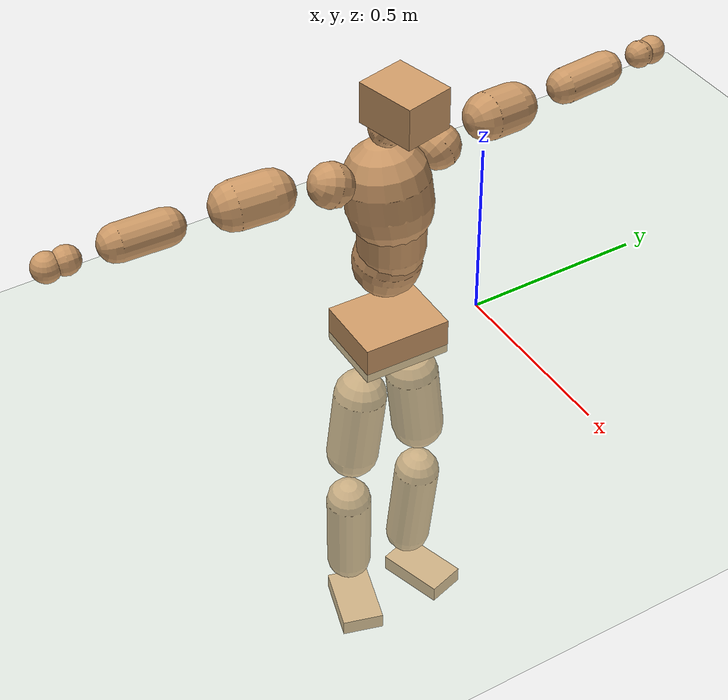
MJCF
<mujoco model="humanoid">
  <compiler coordinate="local" angle="radian"/>
  <default>
    <joint damping="0.0" armature="0.01" stiffness="0.0" limited="true"/>
    <geom conaffinity="1" condim="3" contype="7" margin="0.001" rgba="0.8 0.6 .4 1"/>
  </default>
  <asset>
    <texture type="skybox" builtin="gradient" rgb1=".4 .5 .6" rgb2="0 0 0" width="100" height="100"/>
    <texture builtin="flat" height="1278" mark="cross" markrgb="1 1 1" name="texgeom" random="0.01" rgb1="0.8 0.6 0.4" rgb2="0.8 0.6 0.4" type="cube" width="127"/>
    <texture builtin="checker" height="100" name="texplane" rgb1="0 0 0" rgb2="0.8 0.8 0.8" type="2d" width="100"/>
    <material name="MatPlane" reflectance="0.5" shininess="1" specular="1" texrepeat="60 60" texture="texplane"/>
    <material name="geom" texture="texgeom" texuniform="true"/>
  </asset>
  <worldbody>
    <light cutoff="100" diffuse="1 1 1" dir="-0 0 -1.3" directional="true" exponent="1" pos="0 0 1.3" specular=".1 .1 .1"/>
    <geom conaffinity="1" condim="3" name="floor" pos="0 0 0" rgba="0.8 0.9 0.8 1" size="100 100 .2" type="plane" material="MatPlane"/>
    <body name="Pelvis" pos="-0.0009 -0.2672 0.0328">
      <freejoint name="Pelvis"/>
      <geom type="box" contype="1" conaffinity="1" density="5359.375449" pos="-0.0131 0.0003 -0.0087" size="0.0999 0.1205 0.0517" quat="0.9999 0.0000 0.0000 -0.0130" name="Pelvis"/>
      <body name="L_Hip" pos="-0.0188 0.0688 -0.0908">
        <joint name="L_Hip_x" type="hinge" pos="0 0 0" axis="1 0 0" stiffness="1600" damping="160" armature="0.02" range="-180.0000 180.0000"/>
        <joint name="L_Hip_y" type="hinge" pos="0 0 0" axis="0 1 0" stiffness="1600" damping="160" armature="0.02" range="-180.0000 180.0000"/>
        <joint name="L_Hip_z" type="hinge" pos="0 0 0" axis="0 0 1" stiffness="1600" damping="160" armature="0.02" range="-180.0000 180.0000"/>
        <geom type="capsule" contype="1" conaffinity="1" density="2040.816327" size="0.0719" fromto="0.0004 0.0109 -0.1014 0.0013 0.0322 -0.2996" name="L_Hip"/>
        <body name="L_Knee" pos="0.0017 0.043 -0.401">
          <joint name="L_Knee_x" type="hinge" pos="0 0 0" axis="1 0 0" stiffness="1600" damping="160" armature="0.02" range="-180.0000 180.0000"/>
          <joint name="L_Knee_y" type="hinge" pos="0 0 0" axis="0 1 0" stiffness="1600" damping="160" armature="0.02" range="-180.0000 180.0000"/>
          <joint name="L_Knee_z" type="hinge" pos="0 0 0" axis="0 0 1" stiffness="1600" damping="160" armature="0.02" range="-180.0000 180.0000"/>
          <geom type="capsule" contype="1" conaffinity="1" density="1234.567901" size="0.0631" fromto="-0.0091 -0.0036 -0.0926 -0.0353 -0.0139 -0.3579" name="L_Knee"/>
          <body name="L_Ankle" pos="-0.0445 -0.0175 -0.4506">
            <joint name="L_Ankle_x" type="hinge" pos="0 0 0" axis="1 0 0" stiffness="1600" damping="160" armature="0.02" range="-180.0000 180.0000"/>
            <joint name="L_Ankle_y" type="hinge" pos="0 0 0" axis="0 1 0" stiffness="1600" damping="160" armature="0.02" range="-180.0000 180.0000"/>
            <joint name="L_Ankle_z" type="hinge" pos="0 0 0" axis="0 0 1" stiffness="1600" damping="160" armature="0.02" range="-180.0000 180.0000"/>
            <geom type="box" contype="1" conaffinity="1" density="1000.000051" pos="0.0645 0.0189 -0.0317" size="0.0956 0.0539 0.0242" quat="0.9898 0.0000 0.0000 0.1421" name="L_Ankle"/>
            <body name="L_Toe" pos="0.129 0.0378 -0.0634">
              <joint name="L_Toe_x" type="hinge" pos="0 0 0" axis="1 0 0" stiffness="1000" damping="100" armature="0.02" range="-180.0000 180.0000"/>
              <joint name="L_Toe_y" type="hinge" pos="0 0 0" axis="0 1 0" stiffness="1000" damping="100" armature="0.02" range="-180.0000 180.0000"/>
              <joint name="L_Toe_z" type="hinge" pos="0 0 0" axis="0 0 1" stiffness="1000" damping="100" armature="0.02" range="-180.0000 180.0000"/>
              <geom type="box" contype="1" conaffinity="1" density="8419982.825807" pos="0.0000 0.0000 0.0312" size="0.0011 0.0027 0.0012" quat="0.9891 0.0000 0.0000 0.1470" name="L_Toe"/>
            </body>
          </body>
        </body>
      </body>
      <body name="R_Hip" pos="-0.0144 -0.0715 -0.0988">
        <joint name="R_Hip_x" type="hinge" pos="0 0 0" axis="1 0 0" stiffness="1600" damping="160" armature="0.02" range="-180.0000 180.0000"/>
        <joint name="R_Hip_y" type="hinge" pos="0 0 0" axis="0 1 0" stiffness="1600" damping="160" armature="0.02" range="-180.0000 180.0000"/>
        <joint name="R_Hip_z" type="hinge" pos="0 0 0" axis="0 0 1" stiffness="1600" damping="160" armature="0.02" range="-180.0000 180.0000"/>
        <geom type="capsule" contype="1" conaffinity="1" density="2040.816327" size="0.0716" fromto="-0.0029 -0.0111 -0.1009 -0.0086 -0.0332 -0.3028" name="R_Hip"/>
        <body name="R_Knee" pos="-0.0115 -0.0443 -0.4037">
          <joint name="R_Knee_x" type="hinge" pos="0 0 0" axis="1 0 0" stiffness="1600" damping="160" armature="0.02" range="-180.0000 180.0000"/>
          <joint name="R_Knee_y" type="hinge" pos="0 0 0" axis="0 1 0" stiffness="1600" damping="160" armature="0.02" range="-180.0000 180.0000"/>
          <joint name="R_Knee_z" type="hinge" pos="0 0 0" axis="0 0 1" stiffness="1600" damping="160" armature="0.02" range="-180.0000 180.0000"/>
          <geom type="capsule" contype="1" conaffinity="1" density="1234.567901" size="0.0625" fromto="-0.0084 0.0045 -0.0920 -0.0324 0.0171 -0.3535" name="R_Knee"/>
          <body name="R_Ankle" pos="-0.0408 0.0216 -0.4456">
            <joint name="R_Ankle_x" type="hinge" pos="0 0 0" axis="1 0 0" stiffness="1600" damping="160" armature="0.02" range="-180.0000 180.0000"/>
            <joint name="R_Ankle_y" type="hinge" pos="0 0 0" axis="0 1 0" stiffness="1600" damping="160" armature="0.02" range="-180.0000 180.0000"/>
            <joint name="R_Ankle_z" type="hinge" pos="0 0 0" axis="0 0 1" stiffness="1600" damping="160" armature="0.02" range="-180.0000 180.0000"/>
            <geom type="box" contype="1" conaffinity="1" density="999.999927" pos="0.0687 -0.0210 -0.0326" size="0.0949 0.0579 0.0231" quat="0.9890 0.0000 0.0000 -0.1480" name="R_Ankle"/>
            <body name="R_Toe" pos="0.1373 -0.0421 -0.0652">
              <joint name="R_Toe_x" type="hinge" pos="0 0 0" axis="1 0 0" stiffness="1000" damping="100" armature="0.02" range="-180.0000 180.0000"/>
              <joint name="R_Toe_y" type="hinge" pos="0 0 0" axis="0 1 0" stiffness="1000" damping="100" armature="0.02" range="-180.0000 180.0000"/>
              <joint name="R_Toe_z" type="hinge" pos="0 0 0" axis="0 0 1" stiffness="1000" damping="100" armature="0.02" range="-180.0000 180.0000"/>
              <geom type="box" contype="1" conaffinity="1" density="7761095.322045" pos="0.0000 0.0000 0.0337" size="0.0012 0.0028 0.0012" quat="0.9902 0.0000 0.0000 -0.1395" name="R_Toe"/>
            </body>
          </body>
        </body>
      </body>
      <body name="Torso" pos="-0.0455 0.0048 0.1375">
        <joint name="Torso_x" type="hinge" pos="0 0 0" axis="1 0 0" stiffness="2000" damping="200" armature="0.02" range="-180.0000 180.0000"/>
        <joint name="Torso_y" type="hinge" pos="0 0 0" axis="0 1 0" stiffness="2000" damping="200" armature="0.02" range="-180.0000 180.0000"/>
        <joint name="Torso_z" type="hinge" pos="0 0 0" axis="0 0 1" stiffness="2000" damping="200" armature="0.02" range="-180.0000 180.0000"/>
        <geom type="capsule" contype="1" conaffinity="1" density="2040.816327" size="0.0904" fromto="0.0180 0.0026 0.0885 0.0130 0.0019 0.0643" name="Torso"/>
        <body name="Spine" pos="0.031 0.0045 0.1528">
          <joint name="Spine_x" type="hinge" pos="0 0 0" axis="1 0 0" stiffness="2000" damping="200" armature="0.02" range="-180.0000 180.0000"/>
          <joint name="Spine_y" type="hinge" pos="0 0 0" axis="0 1 0" stiffness="2000" damping="200" armature="0.02" range="-180.0000 180.0000"/>
          <joint name="Spine_z" type="hinge" pos="0 0 0" axis="0 0 1" stiffness="2000" damping="200" armature="0.02" range="-180.0000 180.0000"/>
          <geom type="capsule" contype="1" conaffinity="1" density="2040.816327" size="0.0889" fromto="0.0093 -0.0046 0.0883 -0.0028 0.0014 -0.0263" name="Spine"/>
          <body name="Chest" pos="0.0065 -0.0032 0.0621">
            <joint name="Chest_x" type="hinge" pos="0 0 0" axis="1 0 0" stiffness="2000" damping="200" armature="0.02" range="-180.0000 180.0000"/>
            <joint name="Chest_y" type="hinge" pos="0 0 0" axis="0 1 0" stiffness="2000" damping="200" armature="0.02" range="-180.0000 180.0000"/>
            <joint name="Chest_z" type="hinge" pos="0 0 0" axis="0 0 1" stiffness="2000" damping="200" armature="0.02" range="-180.0000 180.0000"/>
            <geom type="capsule" contype="1" conaffinity="1" density="2040.816327" size="0.113" fromto="-0.0180 -0.0057 0.1115 -0.0073 -0.0023 0.0452" name="Chest"/>
            <body name="Neck" pos="-0.0376 -0.0132 0.2267">
              <joint name="Neck_x" type="hinge" pos="0 0 0" axis="1 0 0" stiffness="1000" damping="100" armature="0.02" range="-180.0000 180.0000"/>
              <joint name="Neck_y" type="hinge" pos="0 0 0" axis="0 1 0" stiffness="1000" damping="100" armature="0.02" range="-180.0000 180.0000"/>
              <joint name="Neck_z" type="hinge" pos="0 0 0" axis="0 0 1" stiffness="1000" damping="100" armature="0.02" range="-180.0000 180.0000"/>
              <geom type="capsule" contype="1" conaffinity="1" density="1000" size="0.0484" fromto="0.0264 0.0052 0.0439 0.0275 0.0055 0.0456" name="Neck"/>
              <body name="Head" pos="0.0539 0.0107 0.0894">
                <joint name="Head_x" type="hinge" pos="0 0 0" axis="1 0 0" stiffness="1000" damping="100" armature="0.02" range="-180.0000 180.0000"/>
                <joint name="Head_y" type="hinge" pos="0 0 0" axis="0 1 0" stiffness="1000" damping="100" armature="0.02" range="-180.0000 180.0000"/>
                <joint name="Head_z" type="hinge" pos="0 0 0" axis="0 0 1" stiffness="1000" damping="100" armature="0.02" range="-180.0000 180.0000"/>
                <geom type="box" contype="1" conaffinity="1" density="2250.000041" pos="0.0280 0.0064 0.0457" size="0.0828 0.0678 0.0563" quat="0.9938 0.0000 0.0000 0.1115" name="Head"/>
              </body>
            </body>
            <body name="L_Thorax" pos="-0.0158 0.0822 0.123">
              <joint name="L_Thorax_x" type="hinge" pos="0 0 0" axis="1 0 0" stiffness="1000" damping="100" armature="0.02" range="-180.0000 180.0000"/>
              <joint name="L_Thorax_y" type="hinge" pos="0 0 0" axis="0 1 0" stiffness="1000" damping="100" armature="0.02" range="-180.0000 180.0000"/>
              <joint name="L_Thorax_z" type="hinge" pos="0 0 0" axis="0 0 1" stiffness="1000" damping="100" armature="0.02" range="-180.0000 180.0000"/>
              <geom type="capsule" contype="1" conaffinity="1" density="1000" size="0.059" fromto="-0.0121 0.0667 0.0250 -0.0124 0.0685 0.0257" name="L_Thorax"/>
              <body name="L_Shoulder" pos="-0.0246 0.1352 0.0508">
                <joint name="L_Shoulder_x" type="hinge" pos="0 0 0" axis="1 0 0" stiffness="1000" damping="100" armature="0.02" range="-720.0000 720.0000"/>
                <joint name="L_Shoulder_y" type="hinge" pos="0 0 0" axis="0 1 0" stiffness="1000" damping="100" armature="0.02" range="-720.0000 720.0000"/>
                <joint name="L_Shoulder_z" type="hinge" pos="0 0 0" axis="0 0 1" stiffness="1000" damping="100" armature="0.02" range="-720.0000 720.0000"/>
                <geom type="capsule" contype="1" conaffinity="1" density="1000" size="0.0629" fromto="-0.0094 0.0922 -0.0066 -0.0180 0.1767 -0.0126" name="L_Shoulder"/>
                <body name="L_Elbow" pos="-0.0275 0.2689 -0.0192">
                  <joint name="L_Elbow_x" type="hinge" pos="0 0 0" axis="1 0 0" stiffness="1000" damping="100" armature="0.02" range="-720.0000 720.0000"/>
                  <joint name="L_Elbow_y" type="hinge" pos="0 0 0" axis="0 1 0" stiffness="1000" damping="100" armature="0.02" range="-720.0000 720.0000"/>
                  <joint name="L_Elbow_z" type="hinge" pos="0 0 0" axis="0 0 1" stiffness="1000" damping="100" armature="0.02" range="-720.0000 720.0000"/>
                  <geom type="capsule" contype="1" conaffinity="1" density="1000" size="0.0473" fromto="-0.0014 0.0771 0.0045 -0.0036 0.2026 0.0117" name="L_Elbow"/>
                  <body name="L_Wrist" pos="-0.0049 0.2797 0.0162">
                    <joint name="L_Wrist_x" type="hinge" pos="0 0 0" axis="1 0 0" stiffness="600" damping="60" armature="0.02" range="-180.0000 180.0000"/>
                    <joint name="L_Wrist_y" type="hinge" pos="0 0 0" axis="0 1 0" stiffness="600" damping="60" armature="0.02" range="-180.0000 180.0000"/>
                    <joint name="L_Wrist_z" type="hinge" pos="0 0 0" axis="0 0 1" stiffness="600" damping="60" armature="0.02" range="-180.0000 180.0000"/>
                    <geom type="capsule" contype="1" conaffinity="1" density="1000" size="0.036" fromto="-0.0079 0.0441 -0.0056 -0.0083 0.0461 -0.0058" name="L_Wrist"/>
                    <body name="L_Hand" pos="-0.0162 0.0902 -0.0114">
                      <joint name="L_Hand_x" type="hinge" pos="0 0 0" axis="1 0 0" stiffness="600" damping="60" armature="0.02" range="-180.0000 180.0000"/>
                      <joint name="L_Hand_y" type="hinge" pos="0 0 0" axis="0 1 0" stiffness="600" damping="60" armature="0.02" range="-180.0000 180.0000"/>
                      <joint name="L_Hand_z" type="hinge" pos="0 0 0" axis="0 0 1" stiffness="600" damping="60" armature="0.02" range="-180.0000 180.0000"/>
                      <geom type="sphere" contype="1" conaffinity="1" density="1000" size="0.0372" pos="0.0000 0.0000 0.0000" name="L_Hand"/>
                    </body>
                  </body>
                </body>
              </body>
            </body>
            <body name="R_Thorax" pos="-0.0225 -0.093 0.1204">
              <joint name="R_Thorax_x" type="hinge" pos="0 0 0" axis="1 0 0" stiffness="1000" damping="100" armature="0.02" range="-180.0000 180.0000"/>
              <joint name="R_Thorax_y" type="hinge" pos="0 0 0" axis="0 1 0" stiffness="1000" damping="100" armature="0.02" range="-180.0000 180.0000"/>
              <joint name="R_Thorax_z" type="hinge" pos="0 0 0" axis="0 0 1" stiffness="1000" damping="100" armature="0.02" range="-180.0000 180.0000"/>
              <geom type="capsule" contype="1" conaffinity="1" density="1000" size="0.0588" fromto="-0.0060 -0.0621 0.0263 -0.0061 -0.0639 0.0271" name="R_Thorax"/>
              <body name="R_Shoulder" pos="-0.0121 -0.126 0.0534">
                <joint name="R_Shoulder_x" type="hinge" pos="0 0 0" axis="1 0 0" stiffness="1000" damping="100" armature="0.02" range="-720.0000 720.0000"/>
                <joint name="R_Shoulder_y" type="hinge" pos="0 0 0" axis="0 1 0" stiffness="1000" damping="100" armature="0.02" range="-720.0000 720.0000"/>
                <joint name="R_Shoulder_z" type="hinge" pos="0 0 0" axis="0 0 1" stiffness="1000" damping="100" armature="0.02" range="-720.0000 720.0000"/>
                <geom type="capsule" contype="1" conaffinity="1" density="1000" size="0.0636" fromto="-0.0132 -0.0925 -0.0055 -0.0263 -0.1840 -0.0109" name="R_Shoulder"/>
                <body name="R_Elbow" pos="-0.0396 -0.2765 -0.0163">
                  <joint name="R_Elbow_x" type="hinge" pos="0 0 0" axis="1 0 0" stiffness="1000" damping="100" armature="0.02" range="-720.0000 720.0000"/>
                  <joint name="R_Elbow_y" type="hinge" pos="0 0 0" axis="0 1 0" stiffness="1000" damping="100" armature="0.02" range="-720.0000 720.0000"/>
                  <joint name="R_Elbow_z" type="hinge" pos="0 0 0" axis="0 0 1" stiffness="1000" damping="100" armature="0.02" range="-720.0000 720.0000"/>
                  <geom type="capsule" contype="1" conaffinity="1" density="1000" size="0.048" fromto="-0.0016 -0.0779 0.0015 -0.0042 -0.2046 0.0040" name="R_Elbow"/>
                  <body name="R_Wrist" pos="-0.0059 -0.2826 0.0055">
                    <joint name="R_Wrist_x" type="hinge" pos="0 0 0" axis="1 0 0" stiffness="600" damping="60" armature="0.02" range="-180.0000 180.0000"/>
                    <joint name="R_Wrist_y" type="hinge" pos="0 0 0" axis="0 1 0" stiffness="600" damping="60" armature="0.02" range="-180.0000 180.0000"/>
                    <joint name="R_Wrist_z" type="hinge" pos="0 0 0" axis="0 0 1" stiffness="600" damping="60" armature="0.02" range="-180.0000 180.0000"/>
                    <geom type="capsule" contype="1" conaffinity="1" density="1000" size="0.0369" fromto="-0.0051 -0.0456 -0.0046 -0.0054 -0.0476 -0.0048" name="R_Wrist"/>
                    <body name="R_Hand" pos="-0.0105 -0.0931 -0.0093">
                      <joint name="R_Hand_x" type="hinge" pos="0 0 0" axis="1 0 0" stiffness="600" damping="60" armature="0.02" range="-180.0000 180.0000"/>
                      <joint name="R_Hand_y" type="hinge" pos="0 0 0" axis="0 1 0" stiffness="600" damping="60" armature="0.02" range="-180.0000 180.0000"/>
                      <joint name="R_Hand_z" type="hinge" pos="0 0 0" axis="0 0 1" stiffness="600" damping="60" armature="0.02" range="-180.0000 180.0000"/>
                      <geom type="sphere" contype="1" conaffinity="1" density="1000" size="0.0380" pos="0.0000 0.0000 0.0000" name="R_Hand"/>
                    </body>
                  </body>
                </body>
              </body>
            </body>
          </body>
        </body>
      </body>
    </body>
  </worldbody>
  <actuator>
    <motor name="L_Hip_x" joint="L_Hip_x" gear="500"/>
    <motor name="L_Hip_y" joint="L_Hip_y" gear="500"/>
    <motor name="L_Hip_z" joint="L_Hip_z" gear="500"/>
    <motor name="L_Knee_x" joint="L_Knee_x" gear="500"/>
    <motor name="L_Knee_y" joint="L_Knee_y" gear="500"/>
    <motor name="L_Knee_z" joint="L_Knee_z" gear="500"/>
    <motor name="L_Ankle_x" joint="L_Ankle_x" gear="500"/>
    <motor name="L_Ankle_y" joint="L_Ankle_y" gear="500"/>
    <motor name="L_Ankle_z" joint="L_Ankle_z" gear="500"/>
    <motor name="L_Toe_x" joint="L_Toe_x" gear="500"/>
    <motor name="L_Toe_y" joint="L_Toe_y" gear="500"/>
    <motor name="L_Toe_z" joint="L_Toe_z" gear="500"/>
    <motor name="R_Hip_x" joint="R_Hip_x" gear="500"/>
    <motor name="R_Hip_y" joint="R_Hip_y" gear="500"/>
    <motor name="R_Hip_z" joint="R_Hip_z" gear="500"/>
    <motor name="R_Knee_x" joint="R_Knee_x" gear="500"/>
    <motor name="R_Knee_y" joint="R_Knee_y" gear="500"/>
    <motor name="R_Knee_z" joint="R_Knee_z" gear="500"/>
    <motor name="R_Ankle_x" joint="R_Ankle_x" gear="500"/>
    <motor name="R_Ankle_y" joint="R_Ankle_y" gear="500"/>
    <motor name="R_Ankle_z" joint="R_Ankle_z" gear="500"/>
    <motor name="R_Toe_x" joint="R_Toe_x" gear="500"/>
    <motor name="R_Toe_y" joint="R_Toe_y" gear="500"/>
    <motor name="R_Toe_z" joint="R_Toe_z" gear="500"/>
    <motor name="Torso_x" joint="Torso_x" gear="500"/>
    <motor name="Torso_y" joint="Torso_y" gear="500"/>
    <motor name="Torso_z" joint="Torso_z" gear="500"/>
    <motor name="Spine_x" joint="Spine_x" gear="500"/>
    <motor name="Spine_y" joint="Spine_y" gear="500"/>
    <motor name="Spine_z" joint="Spine_z" gear="500"/>
    <motor name="Chest_x" joint="Chest_x" gear="500"/>
    <motor name="Chest_y" joint="Chest_y" gear="500"/>
    <motor name="Chest_z" joint="Chest_z" gear="500"/>
    <motor name="Neck_x" joint="Neck_x" gear="500"/>
    <motor name="Neck_y" joint="Neck_y" gear="500"/>
    <motor name="Neck_z" joint="Neck_z" gear="500"/>
    <motor name="Head_x" joint="Head_x" gear="500"/>
    <motor name="Head_y" joint="Head_y" gear="500"/>
    <motor name="Head_z" joint="Head_z" gear="500"/>
    <motor name="L_Thorax_x" joint="L_Thorax_x" gear="500"/>
    <motor name="L_Thorax_y" joint="L_Thorax_y" gear="500"/>
    <motor name="L_Thorax_z" joint="L_Thorax_z" gear="500"/>
    <motor name="L_Shoulder_x" joint="L_Shoulder_x" gear="500"/>
    <motor name="L_Shoulder_y" joint="L_Shoulder_y" gear="500"/>
    <motor name="L_Shoulder_z" joint="L_Shoulder_z" gear="500"/>
    <motor name="L_Elbow_x" joint="L_Elbow_x" gear="500"/>
    <motor name="L_Elbow_y" joint="L_Elbow_y" gear="500"/>
    <motor name="L_Elbow_z" joint="L_Elbow_z" gear="500"/>
    <motor name="L_Wrist_x" joint="L_Wrist_x" gear="500"/>
    <motor name="L_Wrist_y" joint="L_Wrist_y" gear="500"/>
    <motor name="L_Wrist_z" joint="L_Wrist_z" gear="500"/>
    <motor name="L_Hand_x" joint="L_Hand_x" gear="500"/>
    <motor name="L_Hand_y" joint="L_Hand_y" gear="500"/>
    <motor name="L_Hand_z" joint="L_Hand_z" gear="500"/>
    <motor name="R_Thorax_x" joint="R_Thorax_x" gear="500"/>
    <motor name="R_Thorax_y" joint="R_Thorax_y" gear="500"/>
    <motor name="R_Thorax_z" joint="R_Thorax_z" gear="500"/>
    <motor name="R_Shoulder_x" joint="R_Shoulder_x" gear="500"/>
    <motor name="R_Shoulder_y" joint="R_Shoulder_y" gear="500"/>
    <motor name="R_Shoulder_z" joint="R_Shoulder_z" gear="500"/>
    <motor name="R_Elbow_x" joint="R_Elbow_x" gear="500"/>
    <motor name="R_Elbow_y" joint="R_Elbow_y" gear="500"/>
    <motor name="R_Elbow_z" joint="R_Elbow_z" gear="500"/>
    <motor name="R_Wrist_x" joint="R_Wrist_x" gear="500"/>
    <motor name="R_Wrist_y" joint="R_Wrist_y" gear="500"/>
    <motor name="R_Wrist_z" joint="R_Wrist_z" gear="500"/>
    <motor name="R_Hand_x" joint="R_Hand_x" gear="500"/>
    <motor name="R_Hand_y" joint="R_Hand_y" gear="500"/>
    <motor name="R_Hand_z" joint="R_Hand_z" gear="500"/>
  </actuator>
  <contact>
    <exclude body1="Torso" body2="Chest"/>
    <exclude body1="Head" body2="Chest"/>
    <exclude body1="R_Knee" body2="R_Toe"/>
    <exclude body1="R_Knee" body2="L_Ankle"/>
    <exclude body1="R_Knee" body2="L_Toe"/>
    <exclude body1="L_Knee" body2="L_Toe"/>
    <exclude body1="L_Knee" body2="R_Ankle"/>
    <exclude body1="L_Knee" body2="R_Toe"/>
    <exclude body1="L_Shoulder" body2="Chest"/>
    <exclude body1="R_Shoulder" body2="Chest"/>
  </contact>
  <sensor/>
  <size njmax="700" nconmax="700"/>
</mujoco>
